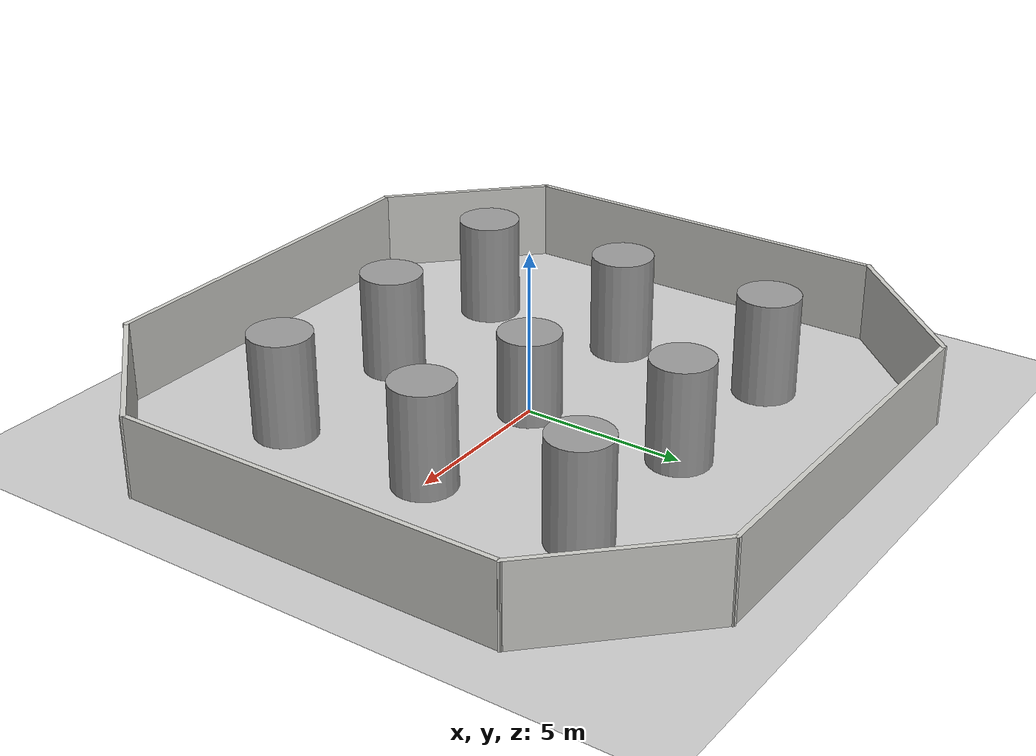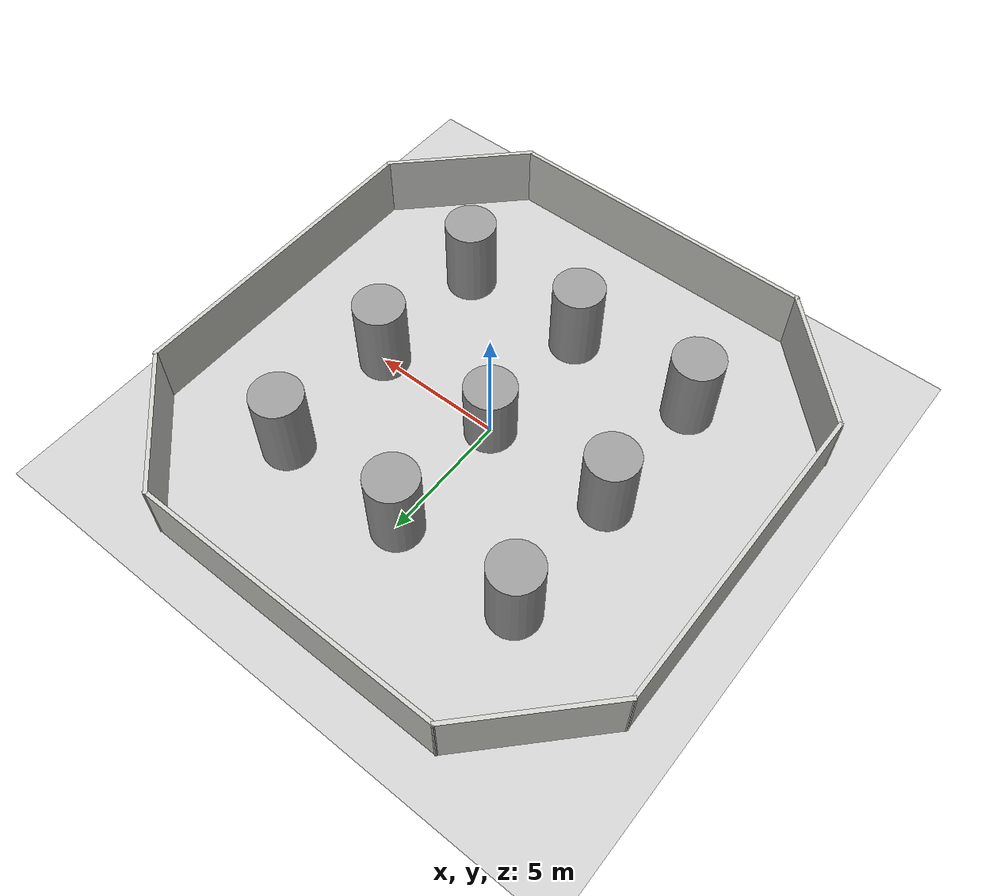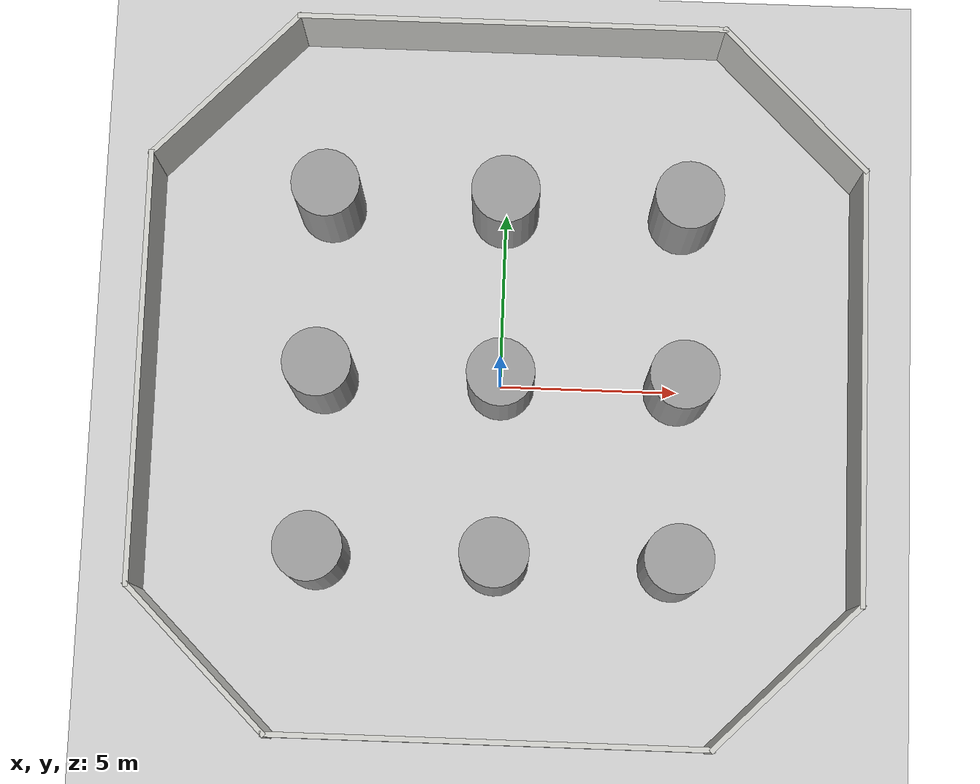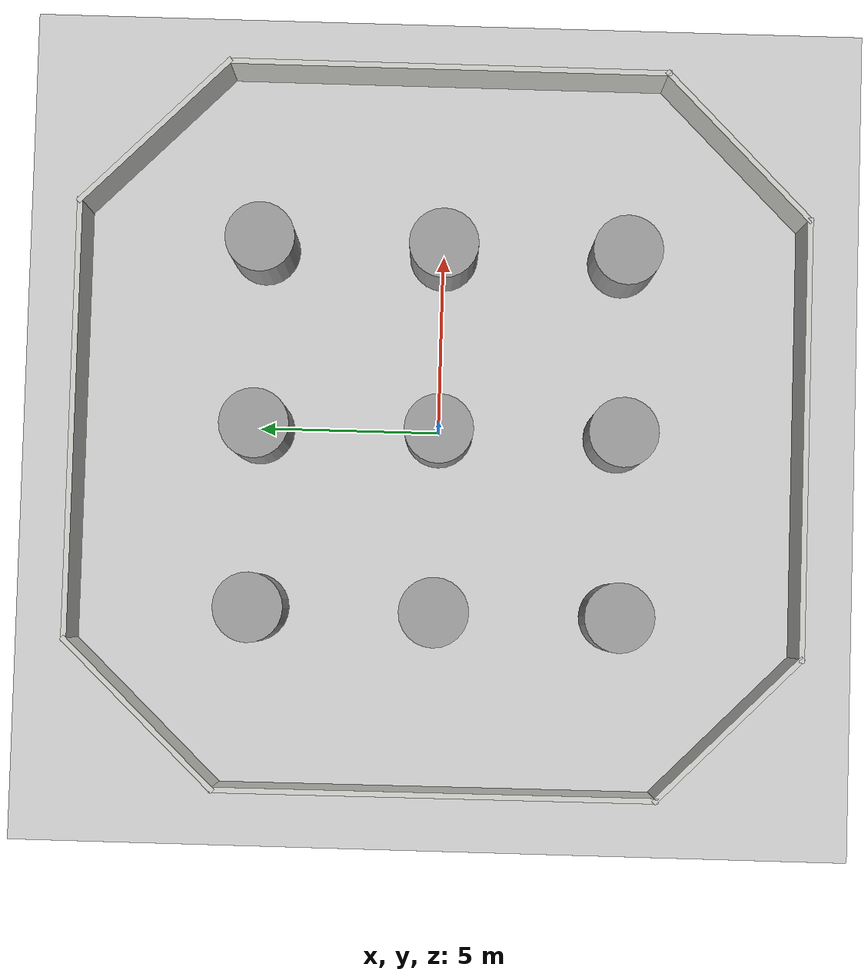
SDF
<sdf version="1.7">
 <world name="default">
  <light name="sun" type="directional">
   <pose>0 0 10 0 -0 0</pose>
   <diffuse>0.8 0.8 0.8 1</diffuse>
   <specular>0.2 0.2 0.2 1</specular>
   <attenuation>
    <range>1000</range>
    <constant>0.9</constant>
    <linear>0.01</linear>
    <quadratic>0.001</quadratic>
   </attenuation>
   <direction>-0.5 0.1 -0.9</direction>
   <spot><inner_angle>0</inner_angle><outer_angle>0</outer_angle><falloff>0</falloff></spot>
  </light>
  <model name="ground_plane">
   <static>1</static>
   <link name="link">
    <collision name="collision">
     <geometry><plane><normal>0 0 1</normal><size>100 100</size></plane></geometry>
     <surface><friction><ode><mu>100</mu><mu2>50</mu2></ode></friction></surface>
    </collision>
    <visual name="visual">
     <cast_shadows>0</cast_shadows>
     <geometry><plane><normal>0 0 1</normal><size>100 100</size></plane></geometry>
     <material>
      <script><uri>file://media/materials/scripts/gazebo.material</uri><name>Gazebo/Grey</name></script>
     </material>
    </visual>
   </link>
  </model>
  <gravity>0 0 -9.8</gravity>
  <magnetic_field>6e-06 2.3e-05 -4.2e-05</magnetic_field>
  <atmosphere type="adiabatic"/>
  <physics type="ode">
   <max_step_size>0.001</max_step_size>
   <real_time_factor>1</real_time_factor>
   <real_time_update_rate>1000</real_time_update_rate>
  </physics>
  <scene><ambient>0.4 0.4 0.4 1</ambient><background>0.7 0.7 0.7 1</background><shadows>1</shadows></scene>
  <spherical_coordinates>
   <surface_model>EARTH_WGS84</surface_model>
   <latitude_deg>0</latitude_deg>
   <longitude_deg>0</longitude_deg>
   <elevation>0</elevation>
   <heading_deg>0</heading_deg>
  </spherical_coordinates>
  <model name="Hexagon">
   <pose>0.007258 0 0 0 -0 0</pose>
   <link name="Wall_12">
    <collision name="Wall_12_Collision">
     <geometry><box><size>12.15 0.15 2.5</size></box></geometry>
     <pose>0 0 1.25 0 -0 0</pose>
    </collision>
    <visual name="Wall_12_Visual">
     <pose>0 0 1.25 0 -0 0</pose>
     <geometry><box><size>12.15 0.15 2.5</size></box></geometry>
     <material>
      <script><uri>file://media/materials/scripts/gazebo.material</uri><name>Gazebo/CeilingTiled</name></script>
      <ambient>1 1 1 1</ambient>
     </material>
     <meta><layer>0</layer></meta>
    </visual>
    <pose>-0.007258 -10 0 0 -0 0</pose>
   </link>
   <link name="Wall_16">
    <collision name="Wall_16_Collision">
     <geometry><box><size>5.75 0.15 2.5</size></box></geometry>
     <pose>0 0 1.25 0 -0 0</pose>
    </collision>
    <visual name="Wall_16_Visual">
     <pose>0 0 1.25 0 -0 0</pose>
     <geometry><box><size>5.75 0.15 2.5</size></box></geometry>
     <material>
      <script><uri>file://media/materials/scripts/gazebo.material</uri><name>Gazebo/CeilingTiled</name></script>
      <ambient>1 1 1 1</ambient>
     </material>
     <meta><layer>0</layer></meta>
    </visual>
    <pose>7.97264 -8.0201 0 0 -0 0.785398</pose>
   </link>
   <link name="Wall_19">
    <collision name="Wall_19_Collision">
     <geometry><box><size>5.75 0.15 2.5</size></box></geometry>
     <pose>0 0 1.25 0 -0 0</pose>
    </collision>
    <visual name="Wall_19_Visual">
     <pose>0 0 1.25 0 -0 0</pose>
     <geometry><box><size>5.75 0.15 2.5</size></box></geometry>
     <material>
      <script><uri>file://media/materials/scripts/gazebo.material</uri><name>Gazebo/CeilingTiled</name></script>
      <ambient>1 1 1 1</ambient>
     </material>
     <meta><layer>0</layer></meta>
    </visual>
    <pose>7.97264 8.0201 0 0 -0 -0.785398</pose>
   </link>
   <link name="Wall_20">
    <collision name="Wall_20_Collision">
     <geometry><box><size>12.2304 0.15 2.5</size></box></geometry>
     <pose>0 0 1.25 0 -0 0</pose>
    </collision>
    <visual name="Wall_20_Visual">
     <pose>0 0 1.25 0 -0 0</pose>
     <geometry><box><size>12.2304 0.15 2.5</size></box></geometry>
     <material>
      <script><uri>file://media/materials/scripts/gazebo.material</uri><name>Gazebo/CeilingTiled</name></script>
      <ambient>1 1 1 1</ambient>
     </material>
     <meta><layer>0</layer></meta>
    </visual>
    <pose>9.95254 0 0 0 -0 -1.5708</pose>
   </link>
   <link name="Wall_23">
    <collision name="Wall_23_Collision">
     <geometry><box><size>12.1514 0.15 2.5</size></box></geometry>
     <pose>0 0 1.25 0 -0 0</pose>
    </collision>
    <visual name="Wall_23_Visual">
     <pose>0 0 1.25 0 -0 0</pose>
     <geometry><box><size>12.1514 0.15 2.5</size></box></geometry>
     <material>
      <script><uri>file://media/materials/scripts/gazebo.material</uri><name>Gazebo/CeilingTiled</name></script>
      <ambient>1 1 1 1</ambient>
     </material>
     <meta><layer>0</layer></meta>
    </visual>
    <pose>-9.93104 -0.128537 0 0 -0 -1.56721</pose>
   </link>
   <link name="Wall_24">
    <collision name="Wall_24_Collision">
     <geometry><box><size>5.64659 0.15 2.5</size></box></geometry>
     <pose>0 0 1.25 0 -0 0</pose>
    </collision>
    <visual name="Wall_24_Visual">
     <pose>0 0 1.25 0 -0 0</pose>
     <geometry><box><size>5.64659 0.15 2.5</size></box></geometry>
     <material>
      <script><uri>file://media/materials/scripts/gazebo.material</uri><name>Gazebo/CeilingTiled</name></script>
      <ambient>1 1 1 1</ambient>
     </material>
     <meta><layer>0</layer></meta>
    </visual>
    <pose>-7.95839 -8.06449 0 0 -0 -0.78138</pose>
   </link>
   <link name="Wall_28">
    <collision name="Wall_28_Collision">
     <geometry><box><size>5.86023 0.15 2.5</size></box></geometry>
     <pose>0 0 1.25 0 -0 0</pose>
    </collision>
    <visual name="Wall_28_Visual">
     <pose>0 0 1.25 0 -0 0</pose>
     <geometry><box><size>5.86023 0.15 2.5</size></box></geometry>
     <material>
      <script><uri>file://media/materials/scripts/gazebo.material</uri><name>Gazebo/CeilingTiled</name></script>
      <ambient>1 1 1 1</ambient>
     </material>
     <meta><layer>0</layer></meta>
    </visual>
    <pose>-7.97991 7.93595 0 0 -0 0.808036</pose>
   </link>
   <link name="Wall_9">
    <collision name="Wall_9_Collision">
     <geometry><box><size>12.15 0.15 2.5</size></box></geometry>
     <pose>0 0 1.25 0 -0 0</pose>
    </collision>
    <visual name="Wall_9_Visual">
     <pose>0 0 1.25 0 -0 0</pose>
     <geometry><box><size>12.15 0.15 2.5</size></box></geometry>
     <material>
      <script><uri>file://media/materials/scripts/gazebo.material</uri><name>Gazebo/CeilingTiled</name></script>
      <ambient>1 1 1 1</ambient>
     </material>
     <meta><layer>0</layer></meta>
    </visual>
    <pose>-0.007258 10 0 0 -0 0</pose>
   </link>
   <static>1</static>
  </model>
  <model name="unit_cylinder_heavy">
   <link name="link">
    <inertial>
     <mass>100000</mass>
     <inertia><ixx>107283</ixx><ixy>0</ixy><ixz>0</ixz><iyy>107283</iyy><iyz>0</iyz><izz>45223.1</izz></inertia>
    </inertial>
    <visual name="visual">
     <geometry><cylinder><radius>0.951032</radius><length>3.18756</length></cylinder></geometry>
     <material>
      <script><name>Gazebo/Grey</name><uri>file://media/materials/scripts/gazebo.material</uri></script>
      <shader type="pixel"><normal_map>__default__</normal_map></shader>
     </material>
    </visual>
    <collision name="collision">
     <geometry><cylinder><radius>0.951032</radius><length>3.18756</length></cylinder></geometry>
     <surface>
      <friction>
       <ode><mu>1</mu><mu2>1</mu2><fdir1>0 0 0</fdir1><slip1>0</slip1><slip2>0</slip2></ode>
       <torsional>
        <coefficient>1</coefficient>
        <patch_radius>0</patch_radius>
        <surface_radius>0</surface_radius>
        <use_patch_radius>1</use_patch_radius>
        <ode><slip>0</slip></ode>
       </torsional>
      </friction>
      <bounce><restitution_coefficient>0</restitution_coefficient><threshold>1e+06</threshold></bounce>
      <contact>
       <collide_without_contact>0</collide_without_contact>
       <collide_without_contact_bitmask>1</collide_without_contact_bitmask>
       <collide_bitmask>1</collide_bitmask>
       <ode>
        <soft_cfm>0</soft_cfm>
        <soft_erp>0.2</soft_erp>
        <kp>1e+13</kp>
        <kd>1</kd>
        <max_vel>0.01</max_vel>
        <min_depth>0</min_depth>
       </ode>
       <bullet>
        <split_impulse>1</split_impulse>
        <split_impulse_penetration_threshold>-0.01</split_impulse_penetration_threshold>
        <soft_cfm>0</soft_cfm>
        <soft_erp>0.2</soft_erp>
        <kp>1e+13</kp>
        <kd>1</kd>
       </bullet>
      </contact>
     </surface>
    </collision>
   </link>
   <static>0</static>
   <pose>-5 -5 1.59378 -0 -0 -0</pose>
  </model>
  <model name="unit_cylinder_heavy_clone">
   <link name="link">
    <inertial>
     <mass>100000</mass>
     <inertia><ixx>107283</ixx><ixy>0</ixy><ixz>0</ixz><iyy>107283</iyy><iyz>0</iyz><izz>45223.1</izz></inertia>
    </inertial>
    <visual name="visual">
     <geometry><cylinder><radius>0.951032</radius><length>3.18756</length></cylinder></geometry>
     <material>
      <script><name>Gazebo/Grey</name><uri>file://media/materials/scripts/gazebo.material</uri></script>
      <shader type="pixel"><normal_map>__default__</normal_map></shader>
     </material>
    </visual>
    <collision name="collision">
     <geometry><cylinder><radius>0.951032</radius><length>3.18756</length></cylinder></geometry>
     <surface>
      <friction>
       <ode><mu>1</mu><mu2>1</mu2><fdir1>0 0 0</fdir1><slip1>0</slip1><slip2>0</slip2></ode>
       <torsional>
        <coefficient>1</coefficient>
        <patch_radius>0</patch_radius>
        <surface_radius>0</surface_radius>
        <use_patch_radius>1</use_patch_radius>
        <ode><slip>0</slip></ode>
       </torsional>
      </friction>
      <bounce><restitution_coefficient>0</restitution_coefficient><threshold>1e+06</threshold></bounce>
      <contact>
       <collide_without_contact>0</collide_without_contact>
       <collide_without_contact_bitmask>1</collide_without_contact_bitmask>
       <collide_bitmask>1</collide_bitmask>
       <ode>
        <soft_cfm>0</soft_cfm>
        <soft_erp>0.2</soft_erp>
        <kp>1e+13</kp>
        <kd>1</kd>
        <max_vel>0.01</max_vel>
        <min_depth>0</min_depth>
       </ode>
       <bullet>
        <split_impulse>1</split_impulse>
        <split_impulse_penetration_threshold>-0.01</split_impulse_penetration_threshold>
        <soft_cfm>0</soft_cfm>
        <soft_erp>0.2</soft_erp>
        <kp>1e+13</kp>
        <kd>1</kd>
       </bullet>
      </contact>
     </surface>
    </collision>
   </link>
   <static>0</static>
   <pose>0 -5 1.59378 -0 -0 -0</pose>
  </model>
  <model name="unit_cylinder_heavy_clone_clone">
   <link name="link">
    <inertial>
     <mass>100000</mass>
     <inertia><ixx>107283</ixx><ixy>0</ixy><ixz>0</ixz><iyy>107283</iyy><iyz>0</iyz><izz>45223.1</izz></inertia>
    </inertial>
    <visual name="visual">
     <geometry><cylinder><radius>0.951032</radius><length>3.18756</length></cylinder></geometry>
     <material>
      <script><name>Gazebo/Grey</name><uri>file://media/materials/scripts/gazebo.material</uri></script>
      <shader type="pixel"><normal_map>__default__</normal_map></shader>
     </material>
    </visual>
    <collision name="collision">
     <geometry><cylinder><radius>0.951032</radius><length>3.18756</length></cylinder></geometry>
     <surface>
      <friction>
       <ode><mu>1</mu><mu2>1</mu2><fdir1>0 0 0</fdir1><slip1>0</slip1><slip2>0</slip2></ode>
       <torsional>
        <coefficient>1</coefficient>
        <patch_radius>0</patch_radius>
        <surface_radius>0</surface_radius>
        <use_patch_radius>1</use_patch_radius>
        <ode><slip>0</slip></ode>
       </torsional>
      </friction>
      <bounce><restitution_coefficient>0</restitution_coefficient><threshold>1e+06</threshold></bounce>
      <contact>
       <collide_without_contact>0</collide_without_contact>
       <collide_without_contact_bitmask>1</collide_without_contact_bitmask>
       <collide_bitmask>1</collide_bitmask>
       <ode>
        <soft_cfm>0</soft_cfm>
        <soft_erp>0.2</soft_erp>
        <kp>1e+13</kp>
        <kd>1</kd>
        <max_vel>0.01</max_vel>
        <min_depth>0</min_depth>
       </ode>
       <bullet>
        <split_impulse>1</split_impulse>
        <split_impulse_penetration_threshold>-0.01</split_impulse_penetration_threshold>
        <soft_cfm>0</soft_cfm>
        <soft_erp>0.2</soft_erp>
        <kp>1e+13</kp>
        <kd>1</kd>
       </bullet>
      </contact>
     </surface>
    </collision>
   </link>
   <static>0</static>
   <pose>4.95406 -5 1.59378 -0 -0 -0</pose>
  </model>
  <model name="unit_cylinder_heavy_clone_clone_clone">
   <link name="link">
    <inertial>
     <mass>100000</mass>
     <inertia><ixx>107283</ixx><ixy>0</ixy><ixz>0</ixz><iyy>107283</iyy><iyz>0</iyz><izz>45223.1</izz></inertia>
    </inertial>
    <visual name="visual">
     <geometry><cylinder><radius>0.951032</radius><length>3.18756</length></cylinder></geometry>
     <material>
      <script><name>Gazebo/Grey</name><uri>file://media/materials/scripts/gazebo.material</uri></script>
      <shader type="pixel"><normal_map>__default__</normal_map></shader>
     </material>
    </visual>
    <collision name="collision">
     <geometry><cylinder><radius>0.951032</radius><length>3.18756</length></cylinder></geometry>
     <surface>
      <friction>
       <ode><mu>1</mu><mu2>1</mu2><fdir1>0 0 0</fdir1><slip1>0</slip1><slip2>0</slip2></ode>
       <torsional>
        <coefficient>1</coefficient>
        <patch_radius>0</patch_radius>
        <surface_radius>0</surface_radius>
        <use_patch_radius>1</use_patch_radius>
        <ode><slip>0</slip></ode>
       </torsional>
      </friction>
      <bounce><restitution_coefficient>0</restitution_coefficient><threshold>1e+06</threshold></bounce>
      <contact>
       <collide_without_contact>0</collide_without_contact>
       <collide_without_contact_bitmask>1</collide_without_contact_bitmask>
       <collide_bitmask>1</collide_bitmask>
       <ode>
        <soft_cfm>0</soft_cfm>
        <soft_erp>0.2</soft_erp>
        <kp>1e+13</kp>
        <kd>1</kd>
        <max_vel>0.01</max_vel>
        <min_depth>0</min_depth>
       </ode>
       <bullet>
        <split_impulse>1</split_impulse>
        <split_impulse_penetration_threshold>-0.01</split_impulse_penetration_threshold>
        <soft_cfm>0</soft_cfm>
        <soft_erp>0.2</soft_erp>
        <kp>1e+13</kp>
        <kd>1</kd>
       </bullet>
      </contact>
     </surface>
    </collision>
   </link>
   <static>0</static>
   <pose>5 0 1.59378 -0 -0 -0</pose>
  </model>
  <model name="unit_cylinder_heavy_clone_clone_clone_clone">
   <link name="link">
    <inertial>
     <mass>100000</mass>
     <inertia><ixx>107283</ixx><ixy>0</ixy><ixz>0</ixz><iyy>107283</iyy><iyz>0</iyz><izz>45223.1</izz></inertia>
    </inertial>
    <visual name="visual">
     <geometry><cylinder><radius>0.951032</radius><length>3.18756</length></cylinder></geometry>
     <material>
      <script><name>Gazebo/Grey</name><uri>file://media/materials/scripts/gazebo.material</uri></script>
      <shader type="pixel"><normal_map>__default__</normal_map></shader>
     </material>
    </visual>
    <collision name="collision">
     <geometry><cylinder><radius>0.951032</radius><length>3.18756</length></cylinder></geometry>
     <surface>
      <friction>
       <ode><mu>1</mu><mu2>1</mu2><fdir1>0 0 0</fdir1><slip1>0</slip1><slip2>0</slip2></ode>
       <torsional>
        <coefficient>1</coefficient>
        <patch_radius>0</patch_radius>
        <surface_radius>0</surface_radius>
        <use_patch_radius>1</use_patch_radius>
        <ode><slip>0</slip></ode>
       </torsional>
      </friction>
      <bounce><restitution_coefficient>0</restitution_coefficient><threshold>1e+06</threshold></bounce>
      <contact>
       <collide_without_contact>0</collide_without_contact>
       <collide_without_contact_bitmask>1</collide_without_contact_bitmask>
       <collide_bitmask>1</collide_bitmask>
       <ode>
        <soft_cfm>0</soft_cfm>
        <soft_erp>0.2</soft_erp>
        <kp>1e+13</kp>
        <kd>1</kd>
        <max_vel>0.01</max_vel>
        <min_depth>0</min_depth>
       </ode>
       <bullet>
        <split_impulse>1</split_impulse>
        <split_impulse_penetration_threshold>-0.01</split_impulse_penetration_threshold>
        <soft_cfm>0</soft_cfm>
        <soft_erp>0.2</soft_erp>
        <kp>1e+13</kp>
        <kd>1</kd>
       </bullet>
      </contact>
     </surface>
    </collision>
   </link>
   <static>0</static>
   <pose>5.0304 4.99949 1.59378 -0 -0 -0.003702</pose>
  </model>
  <model name="unit_cylinder_heavy_clone_clone_clone_clone_clone">
   <link name="link">
    <inertial>
     <mass>100000</mass>
     <inertia><ixx>107283</ixx><ixy>0</ixy><ixz>0</ixz><iyy>107283</iyy><iyz>0</iyz><izz>45223.1</izz></inertia>
    </inertial>
    <visual name="visual">
     <geometry><cylinder><radius>0.951032</radius><length>3.18756</length></cylinder></geometry>
     <material>
      <script><name>Gazebo/Grey</name><uri>file://media/materials/scripts/gazebo.material</uri></script>
      <shader type="pixel"><normal_map>__default__</normal_map></shader>
     </material>
    </visual>
    <collision name="collision">
     <geometry><cylinder><radius>0.951032</radius><length>3.18756</length></cylinder></geometry>
     <surface>
      <friction>
       <ode><mu>1</mu><mu2>1</mu2><fdir1>0 0 0</fdir1><slip1>0</slip1><slip2>0</slip2></ode>
       <torsional>
        <coefficient>1</coefficient>
        <patch_radius>0</patch_radius>
        <surface_radius>0</surface_radius>
        <use_patch_radius>1</use_patch_radius>
        <ode><slip>0</slip></ode>
       </torsional>
      </friction>
      <bounce><restitution_coefficient>0</restitution_coefficient><threshold>1e+06</threshold></bounce>
      <contact>
       <collide_without_contact>0</collide_without_contact>
       <collide_without_contact_bitmask>1</collide_without_contact_bitmask>
       <collide_bitmask>1</collide_bitmask>
       <ode>
        <soft_cfm>0</soft_cfm>
        <soft_erp>0.2</soft_erp>
        <kp>1e+13</kp>
        <kd>1</kd>
        <max_vel>0.01</max_vel>
        <min_depth>0</min_depth>
       </ode>
       <bullet>
        <split_impulse>1</split_impulse>
        <split_impulse_penetration_threshold>-0.01</split_impulse_penetration_threshold>
        <soft_cfm>0</soft_cfm>
        <soft_erp>0.2</soft_erp>
        <kp>1e+13</kp>
        <kd>1</kd>
       </bullet>
      </contact>
     </surface>
    </collision>
   </link>
   <static>0</static>
   <pose>-0.03232 5 1.59378 -0 -0 -0</pose>
  </model>
  <model name="unit_cylinder_heavy_clone_clone_clone_clone_clone_clone">
   <link name="link">
    <inertial>
     <mass>100000</mass>
     <inertia><ixx>107283</ixx><ixy>0</ixy><ixz>0</ixz><iyy>107283</iyy><iyz>0</iyz><izz>45223.1</izz></inertia>
    </inertial>
    <visual name="visual">
     <geometry><cylinder><radius>0.951032</radius><length>3.18756</length></cylinder></geometry>
     <material>
      <script><name>Gazebo/Grey</name><uri>file://media/materials/scripts/gazebo.material</uri></script>
      <shader type="pixel"><normal_map>__default__</normal_map></shader>
     </material>
    </visual>
    <collision name="collision">
     <geometry><cylinder><radius>0.951032</radius><length>3.18756</length></cylinder></geometry>
     <surface>
      <friction>
       <ode><mu>1</mu><mu2>1</mu2><fdir1>0 0 0</fdir1><slip1>0</slip1><slip2>0</slip2></ode>
       <torsional>
        <coefficient>1</coefficient>
        <patch_radius>0</patch_radius>
        <surface_radius>0</surface_radius>
        <use_patch_radius>1</use_patch_radius>
        <ode><slip>0</slip></ode>
       </torsional>
      </friction>
      <bounce><restitution_coefficient>0</restitution_coefficient><threshold>1e+06</threshold></bounce>
      <contact>
       <collide_without_contact>0</collide_without_contact>
       <collide_without_contact_bitmask>1</collide_without_contact_bitmask>
       <collide_bitmask>1</collide_bitmask>
       <ode>
        <soft_cfm>0</soft_cfm>
        <soft_erp>0.2</soft_erp>
        <kp>1e+13</kp>
        <kd>1</kd>
        <max_vel>0.01</max_vel>
        <min_depth>0</min_depth>
       </ode>
       <bullet>
        <split_impulse>1</split_impulse>
        <split_impulse_penetration_threshold>-0.01</split_impulse_penetration_threshold>
        <soft_cfm>0</soft_cfm>
        <soft_erp>0.2</soft_erp>
        <kp>1e+13</kp>
        <kd>1</kd>
       </bullet>
      </contact>
     </surface>
    </collision>
   </link>
   <static>0</static>
   <pose>0 0 1 -0 -0 -0</pose>
  </model>
  <model name="unit_cylinder_heavy_clone_clone_clone_clone_clone_clone_0">
   <link name="link">
    <inertial>
     <mass>100000</mass>
     <inertia><ixx>107283</ixx><ixy>0</ixy><ixz>0</ixz><iyy>107283</iyy><iyz>0</iyz><izz>45223.1</izz></inertia>
    </inertial>
    <visual name="visual">
     <geometry><cylinder><radius>0.951032</radius><length>3.18756</length></cylinder></geometry>
     <material>
      <script><name>Gazebo/Grey</name><uri>file://media/materials/scripts/gazebo.material</uri></script>
      <shader type="pixel"><normal_map>__default__</normal_map></shader>
     </material>
    </visual>
    <collision name="collision">
     <geometry><cylinder><radius>0.951032</radius><length>3.18756</length></cylinder></geometry>
     <surface>
      <friction>
       <ode><mu>1</mu><mu2>1</mu2><fdir1>0 0 0</fdir1><slip1>0</slip1><slip2>0</slip2></ode>
       <torsional>
        <coefficient>1</coefficient>
        <patch_radius>0</patch_radius>
        <surface_radius>0</surface_radius>
        <use_patch_radius>1</use_patch_radius>
        <ode><slip>0</slip></ode>
       </torsional>
      </friction>
      <bounce><restitution_coefficient>0</restitution_coefficient><threshold>1e+06</threshold></bounce>
      <contact>
       <collide_without_contact>0</collide_without_contact>
       <collide_without_contact_bitmask>1</collide_without_contact_bitmask>
       <collide_bitmask>1</collide_bitmask>
       <ode>
        <soft_cfm>0</soft_cfm>
        <soft_erp>0.2</soft_erp>
        <kp>1e+13</kp>
        <kd>1</kd>
        <max_vel>0.01</max_vel>
        <min_depth>0</min_depth>
       </ode>
       <bullet>
        <split_impulse>1</split_impulse>
        <split_impulse_penetration_threshold>-0.01</split_impulse_penetration_threshold>
        <soft_cfm>0</soft_cfm>
        <soft_erp>0.2</soft_erp>
        <kp>1e+13</kp>
        <kd>1</kd>
       </bullet>
      </contact>
     </surface>
    </collision>
   </link>
   <static>0</static>
   <pose>-5 5 1.59378 -0 -0 -0</pose>
  </model>
  <model name="unit_cylinder_heavy_clone_clone_clone_clone_clone_clone_0_clone">
   <link name="link">
    <inertial>
     <mass>100000</mass>
     <inertia><ixx>107283</ixx><ixy>0</ixy><ixz>0</ixz><iyy>107283</iyy><iyz>0</iyz><izz>45223.1</izz></inertia>
    </inertial>
    <visual name="visual">
     <geometry><cylinder><radius>0.951032</radius><length>3.18756</length></cylinder></geometry>
     <material>
      <script><name>Gazebo/Grey</name><uri>file://media/materials/scripts/gazebo.material</uri></script>
      <shader type="pixel"><normal_map>__default__</normal_map></shader>
     </material>
    </visual>
    <collision name="collision">
     <geometry><cylinder><radius>0.951032</radius><length>3.18756</length></cylinder></geometry>
     <surface>
      <friction>
       <ode><mu>1</mu><mu2>1</mu2><fdir1>0 0 0</fdir1><slip1>0</slip1><slip2>0</slip2></ode>
       <torsional>
        <coefficient>1</coefficient>
        <patch_radius>0</patch_radius>
        <surface_radius>0</surface_radius>
        <use_patch_radius>1</use_patch_radius>
        <ode><slip>0</slip></ode>
       </torsional>
      </friction>
      <bounce><restitution_coefficient>0</restitution_coefficient><threshold>1e+06</threshold></bounce>
      <contact>
       <collide_without_contact>0</collide_without_contact>
       <collide_without_contact_bitmask>1</collide_without_contact_bitmask>
       <collide_bitmask>1</collide_bitmask>
       <ode>
        <soft_cfm>0</soft_cfm>
        <soft_erp>0.2</soft_erp>
        <kp>1e+13</kp>
        <kd>1</kd>
        <max_vel>0.01</max_vel>
        <min_depth>0</min_depth>
       </ode>
       <bullet>
        <split_impulse>1</split_impulse>
        <split_impulse_penetration_threshold>-0.01</split_impulse_penetration_threshold>
        <soft_cfm>0</soft_cfm>
        <soft_erp>0.2</soft_erp>
        <kp>1e+13</kp>
        <kd>1</kd>
       </bullet>
      </contact>
     </surface>
    </collision>
   </link>
   <static>0</static>
   <pose>-5 0 1.59378 -0 -0 -0</pose>
  </model>
 </world>
</sdf>
